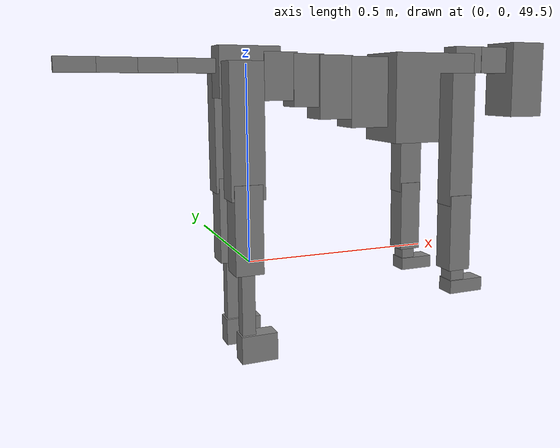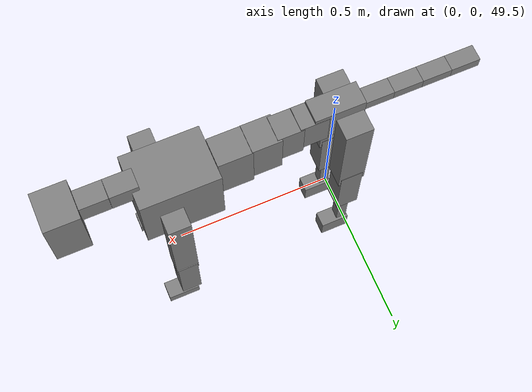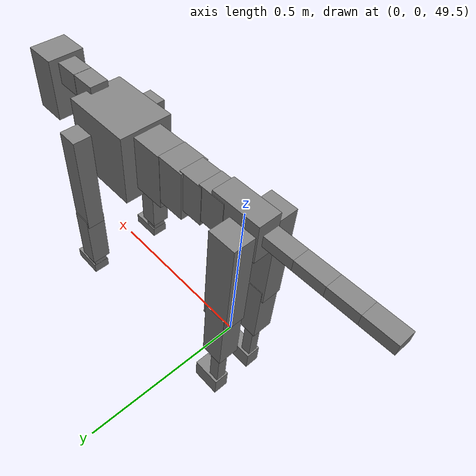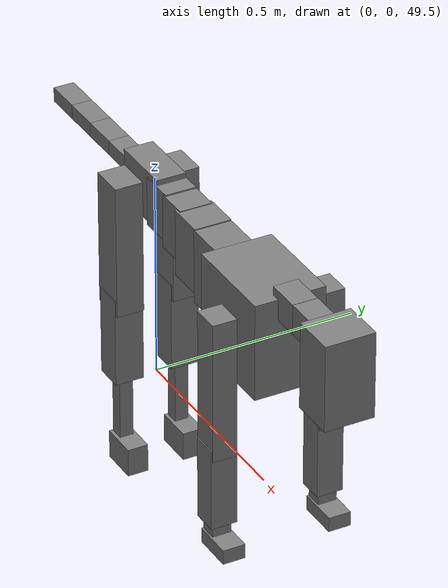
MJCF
<mujoco model="dog">

    <default>
        <joint armature="0.02" stiffness="1" damping="0.2" limited="true"/>
        <geom condim="3" friction="1 0.05 0.05" margin="0.01"/>
        <motor ctrllimited="true" ctrlrange="-1.0 1.0" forcelimited="true" gear="50"/>
    </default>

    <compiler inertiafromgeom="true" angle="radian"/>

    <option timestep="0.016" iterations="50" tolerance="1e-10" solver="Newton" jacobian="dense" cone="pyramidal"/>

    <size nconmax="20000" njmax="60000" nstack="5000000"/>
    <visual>
        <map force="0.1" zfar="30"/>
        <rgba haze="0.15 0.25 0.35 1"/>
        <quality shadowsize="2048"/>
        <global offwidth="800" offheight="800"/>
    </visual>

    <asset>
        <texture type="skybox" builtin="gradient" rgb1="0.3 0.5 0.7" rgb2="0 0 0" width="512" height="512"/>
        <texture name="texplane" type="2d" builtin="checker" rgb1=".2 .3 .4" rgb2=".1 0.15 0.2" width="512" height="512"
                 mark="cross" markrgb=".8 .8 .8"/>
        <texture name="texgeom" type="cube" builtin="flat" mark="cross" width="127" height="1278" rgb1="0.8 0.6 0.4"
                 rgb2="0.8 0.6 0.4" markrgb="1 1 1" random="0.01"/>

        <material name="matplane" reflectance="0.3" texture="texplane" texrepeat="1 1" texuniform="true"/>
        <material name="matgeom" texture="texgeom" texuniform="true" rgba="0.8 0.6 .4 1"/>
    </asset>

    <worldbody>
        <geom name="floor" pos="0 0 0" size="0 0 .25" type="plane" material="matplane" condim="3"/>

        <light directional="false" diffuse=".2 .2 .2" specular="0 0 0" pos="0 0 5" dir="0 0 -1" castshadow="false"/>
        <light mode="targetbodycom" target="torso" directional="false" diffuse=".8 .8 .8" specular="0.3 0.3 0.3"
               pos="0 0 4.0" dir="0 0 -1"/>

        <body name="root" pos="0 0 50">
            <freejoint name="root_1"/>
            <geom type="box" pos="0 0 -0.02" size="0.0774  0.0358  0.063" density="2030"/>

            <body name="spine1" pos="0.054 0 0">
                <joint name="spine1_y" axis="0 1 0" range="0 0.7" limited="true"/>
                <geom type="box" pos="0.02375 0 -0.03" size="0.04375  0.0375  0.05985" density="2030"/>

                <body name="spine2" pos="0.0612 0 0">
                    <joint name="spine2_y" axis="0 1 0" range="-0.15 0.15" limited="true"/>
                    <geom type="box" pos="0.03555  0  -0.04" size="0.04055  0.039  0.06615" density="2030"/>

                    <body name="spine3" pos="0.0730 0 0">
                        <joint name="spine3_y" axis="0 1 0" range="-0.15 0.15" limited="true"/>
                        <geom type="box" pos="0.03555  0  -0.057" size="0.04555  0.0445  0.081" density="2030"/>

                        <body name="spine4" pos="0.0780 0 0">
                            <joint name="spine4_y" axis="0 1 0" range="-0.15 0.15" limited="true"/>
                            <geom type="box" pos="0.05265  0  -0.07" size="0.05265  0.045  0.09135" density="2030"/>

                            <body name="torso" pos="0.1082 0 0">
                                <joint name="torso_y" axis="0 1 0" range="-0.15 0.15" limited="true"/>
                                <geom type="box" pos="0.11925  0  -0.085" size="0.11925  0.085  0.11745"
                                      density="2030"/>

                                <body name="neck1" pos="0.2160  0   0.0180">
                                    <joint name="neck1_y" axis="0 1 0" range="-1.2  -1" limited="true"/>
                                    <geom type="box" pos="0.0423  0  0" size="0.0423  0.03  0.036" density="2325"/>

                                    <body name="neck2" pos="0.0853  0  0">
                                        <joint name="neck2_y" axis="0 1 0" range="0.1  0" limited="true"/>
                                        <geom type="box" pos="0.0423  0  0" size="0.0423  0.03  0.036" density="2325"/>

                                        <body name="head" pos="0.0853  0  0">
                                            <joint name="head_y" axis="0 1 0" range="-0.3  -0.2" limited="true"/>
                                            <geom type="box" pos="0.0531  0  -0.055" size="0.0531  0.06  0.1044"
                                                  density="4030"/>

                                        </body>
                                    </body>
                                </body>

                                <body name="front_shoulder" pos="0.156  0   -0.0480">
                                    <joint name="front_shoulder_y" axis="0 1 0" range="-1 1.5" limited="true"/>
                                    <geom type="box" pos="0 0.13 -0.1453" size="0.0341  0.0291  0.1720" density="1158"/>
                                    <geom type="box" pos="0 -0.13 -0.1453" size="0.0341  0.0291  0.1720"
                                          density="1158"/>

                                    <body name="front_elbow" pos="0  0  -0.2907">
                                        <joint name="front_elbow_y" axis="0 1 0" range="-2 0" limited="true"/>
                                        <geom type="box" pos="0 0.13 -0.1003" size="0.0311  0.0318  0.1003"
                                              density="1081"/>
                                        <geom type="box" pos="0 -0.13 -0.1003" size="0.0311  0.0318  0.1003"
                                              density="1081"/>

                                        <body name="front_wrist" pos="0  0  -0.2006">
                                            <joint name="front_wrist_y" axis="0 1 0" range="-0.2 0" limited="true"/>
                                            <geom type="box" pos="0 0.13 -0.0221" size="0.0205  0.0228  0.0353"
                                                  density="1664"/>
                                            <geom type="box" pos="0 -0.13 -0.0221" size="0.0205  0.0228  0.0353"
                                                  density="1664"/>

                                            <body name="front_finger_end" pos="0  0  -0.0442">
                                                <joint name="front_finger_y" axis="0 1 0" range="-0.4 1"
                                                       limited="true"/>
                                                <geom type="box" pos="0.0269  0.13  -0.0028"
                                                      size="0.0494  0.0269  0.0178" density="1515"/>
                                                <geom type="box" pos="0.0269  -0.13  -0.0028"
                                                      size="0.0494  0.0269  0.0178" density="1515"/>

                                            </body>

                                        </body>
                                    </body>
                                </body>

                            </body>
                        </body>
                    </body>
                </body>
            </body>

            <body name="back_hip" pos="-0.03 0 -0.018">
                <joint name="back_hip_y" axis="0 1 0" range="-1.5 0.3" limited="true"/>
                <geom type="box" pos="0 0.07 -0.1417" size="0.0426  0.0334  0.1645" density="1154"/>
                <geom type="box" pos="0 -0.07 -0.1417" size="0.0426  0.0334  0.1645" density="1154"/>

                <body name="back_knee" pos="0  0  -0.2835">
                    <joint name="back_knee_y" axis="0 1 0" range="0 2.8" limited="true"/>
                    <geom type="box" pos="0 0.07 -0.0947" size="0.0354  0.0349  0.1102" density="1227"/>
                    <geom type="box" pos="0 -0.07 -0.0947" size="0.0354  0.0349  0.1102" density="1227"/>

                    <body name="back_ankle" pos="0  0  -0.1894">
                        <joint name="back_ankle_y" axis="0 1 0" range="-2.2 0" limited="true"/>
                        <geom type="box" pos="0 0.07 -0.0935" size="0.0168  0.0168  0.1047" density="1284"/>
                        <geom type="box" pos="0 -0.07 -0.0935" size="0.0168  0.0168  0.1047" density="1284"/>

                        <body name="back_toe_end" pos="0  0  -0.1870">
                            <joint name="back_toe_y" axis="0 1 0" range="-0.4 1" limited="true"/>
                            <geom type="box" pos="0.0251  0.07  -0.0199" size="0.0461  0.0251  0.0349" density="1515"/>
                            <geom type="box" pos="0.0251  -0.07  -0.0199" size="0.0461  0.0251  0.0349" density="1515"/>

                        </body>
                    </body>
                </body>
            </body>

            <body name="tail1" pos="-0.074 0 -0.006">
                <joint name="tail1_y" axis="0 1 0" range="-0.2 0.2" limited="true"/>
                <geom type="box" pos="-0.0536  0  0" size="0.045  0.025  0.0175" density="1587"/>

                <body name="tail2" pos="-0.09 0 0">
                    <joint name="tail2_y" axis="0 1 0" range="-0.2 0.2" limited="true"/>
                    <geom type="box" pos="-0.0536  0  0" size="0.045  0.025  0.0175" density="1587"/>

                    <body name="tail3" pos="-0.09 0 0">
                        <joint name="tail3_y" axis="0 1 0" range="-0.2 0.2" limited="true"/>
                        <geom type="box" pos="-0.0536  0  0" size="0.045  0.025  0.0175" density="1587"/>

                        <body name="tail4" pos="-0.09 0 0">
                            <joint name="tail4_y" axis="0 1 0" range="-0.2 0.2" limited="true"/>
                            <geom type="box" pos="-0.0536  0  0" size="0.045  0.025  0.0175" density="1587"/>

                        </body>
                    </body>
                </body>
            </body>
        </body>
    </worldbody>

    <actuator>
        <motor joint="spine1_y" forcerange="-150 150     "/>
        <motor joint="spine2_y" forcerange="-150 150     "/>
        <motor joint="spine3_y" forcerange="-150 150     "/>
        <motor joint="spine4_y" forcerange="-150 150     "/>
        <motor joint="torso_y" forcerange="-150 150     "/>
        <motor joint="neck1_y" forcerange="-100 100       "/>
        <motor joint="neck2_y" forcerange="-100 100       "/>
        <motor joint="head_y" forcerange="-150 150       "/>
        <motor joint="front_shoulder_y" forcerange="-116.30 177.96"/>
        <motor joint="front_elbow_y" forcerange="-137.79 193.25"/>
        <motor joint="front_wrist_y" forcerange="-86.29 96.35"/>
        <motor joint="front_finger_y" forcerange="-66.77 36.86"/>
        <motor joint="back_hip_y" forcerange="-316.60 328.75"/>
        <motor joint="back_knee_y" forcerange="-350.71 356.95"/>
        <motor joint="back_angle_y" forcerange="-81.11 87.53"/>
        <motor joint="back_toe_y" forcerange="-75.77 45.18"/>
        <motor joint="tail1_y" forcerange="-50 50     "/>
        <motor joint="tail2_y" forcerange="-50 50     "/>
        <motor joint="tail3_y" forcerange="-50 50     "/>
        <motor joint="tail4_y" forcerange="-50 50     "/>
    </actuator>
</mujoco>
